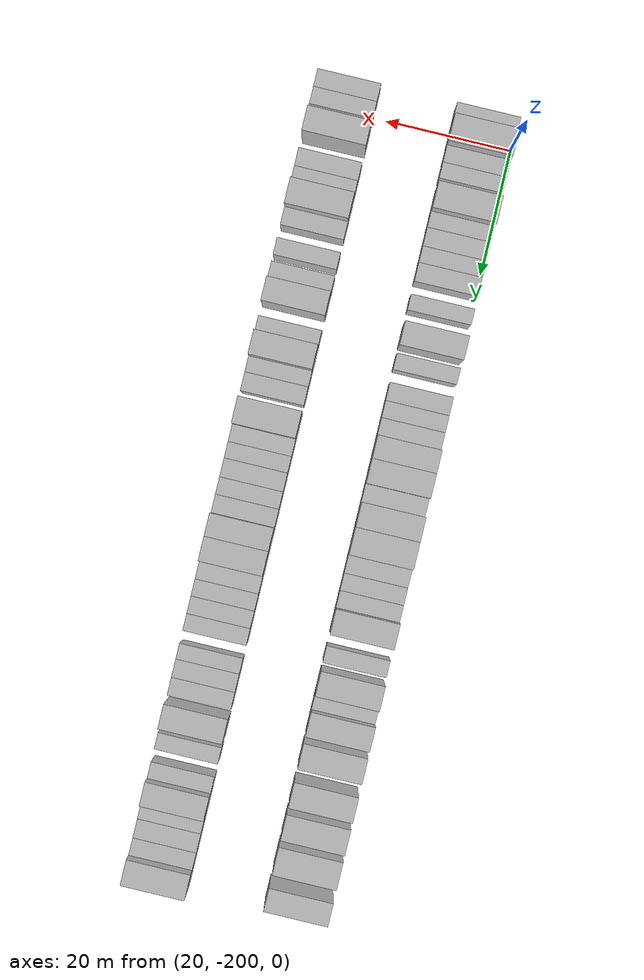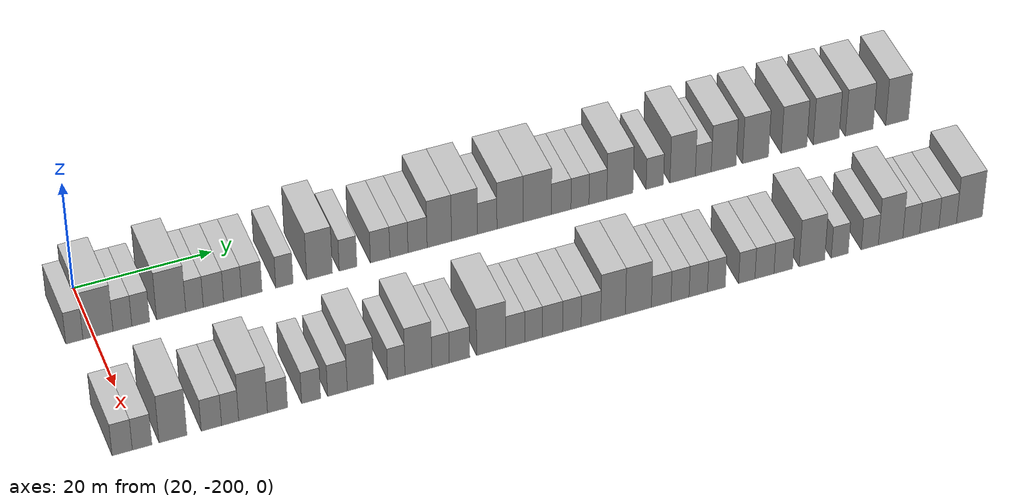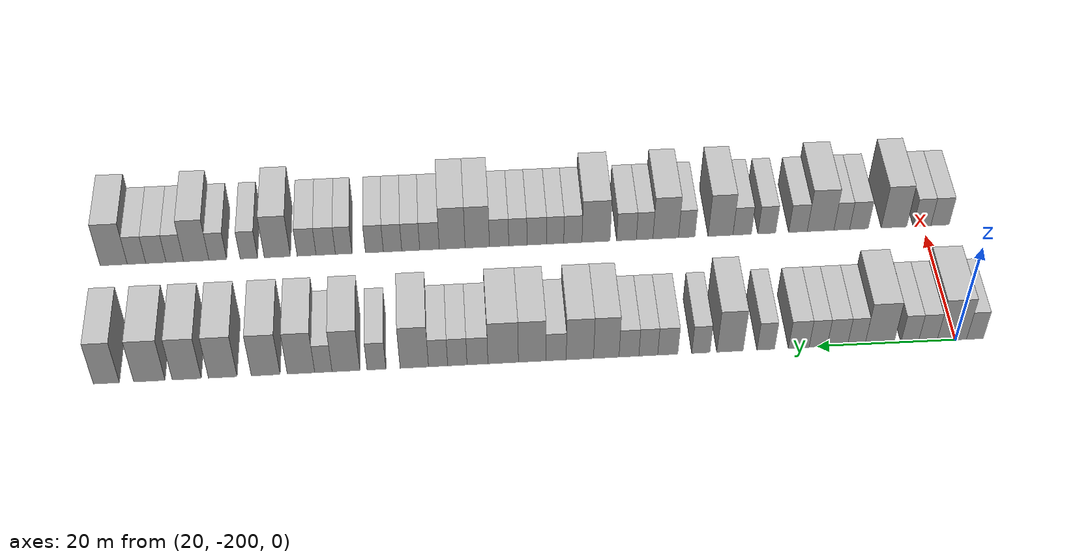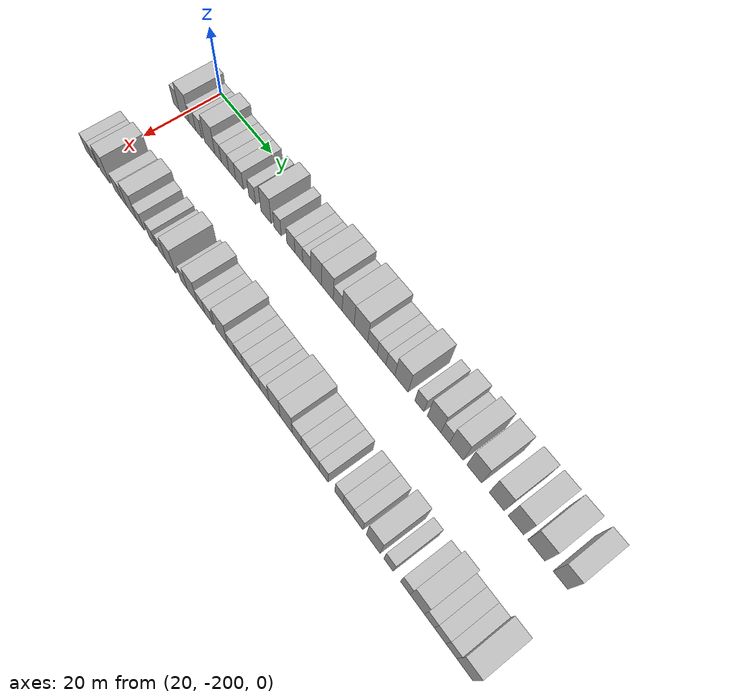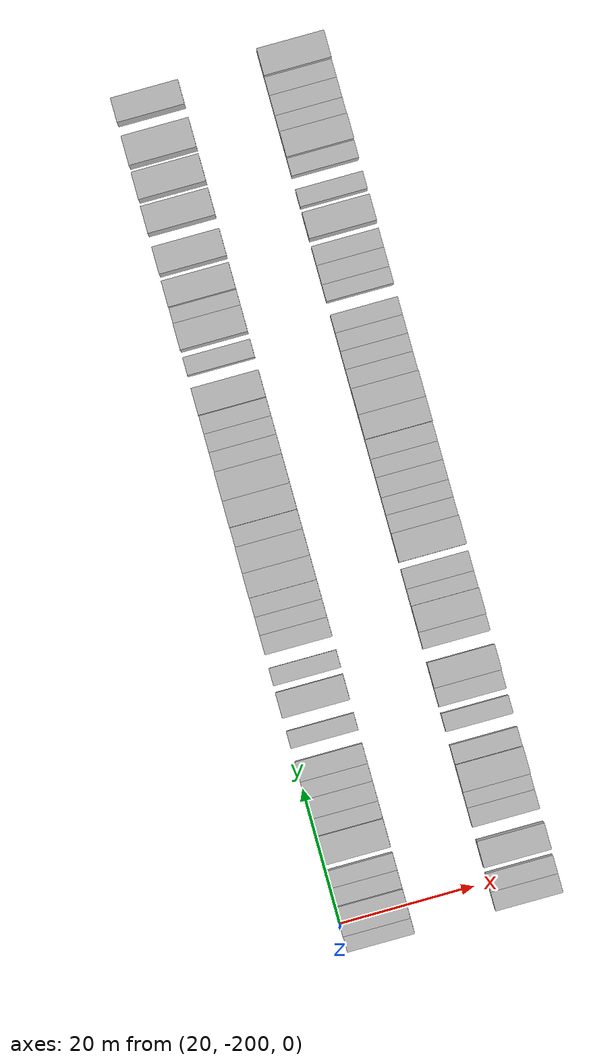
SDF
<sdf version="1.6">
 <world name="default">
  <model name="building_1">
   <static>1</static>
   <pose>25.0000 -202.7834 0 0.000000 0.000000 0.000000</pose>
   <link name="link">
    <pose>0 0 3.00 0 0 0</pose>
    <collision name="collision"><geometry><box><size>10.0000 2.4333 6.0000</size></box></geometry></collision>
    <visual name="visual">
     <cast_shadows>0</cast_shadows>
     <geometry><box><size>10.0000 2.4333 6.0000</size></box></geometry>
     <material>
      <script>
       <uri>model://HANNAS_wall/materials/scripts</uri>
       <uri>model://HANNAS_wall/materials/textures</uri>
       <name>vrc/HANNAS_wall</name>
      </script>
     </material>
    </visual>
   </link>
  </model>
  <model name="building_2">
   <static>1</static>
   <pose>25.0000 -199.4211 0 0.000000 0.000000 0.000000</pose>
   <link name="link">
    <pose>0 0 4.50 0 0 0</pose>
    <collision name="collision"><geometry><box><size>10.0000 4.2912 9.0000</size></box></geometry></collision>
    <visual name="visual">
     <cast_shadows>0</cast_shadows>
     <geometry><box><size>10.0000 4.2912 9.0000</size></box></geometry>
     <material>
      <script>
       <uri>model://HANNAS_wall/materials/scripts</uri>
       <uri>model://HANNAS_wall/materials/textures</uri>
       <name>vrc/HANNAS_wall</name>
      </script>
     </material>
    </visual>
   </link>
  </model>
  <model name="building_3">
   <static>1</static>
   <pose>25.0000 -195.9313 0 0.000000 0.000000 0.000000</pose>
   <link name="link">
    <pose>0 0 3.00 0 0 0</pose>
    <collision name="collision"><geometry><box><size>10.0000 2.6886 6.0000</size></box></geometry></collision>
    <visual name="visual">
     <cast_shadows>0</cast_shadows>
     <geometry><box><size>10.0000 2.6886 6.0000</size></box></geometry>
     <material>
      <script>
       <uri>model://HANNAS_wall/materials/scripts</uri>
       <uri>model://HANNAS_wall/materials/textures</uri>
       <name>vrc/HANNAS_wall</name>
      </script>
     </material>
    </visual>
   </link>
  </model>
  <model name="building_4">
   <static>1</static>
   <pose>25.0000 -193.3184 0 0.000000 0.000000 0.000000</pose>
   <link name="link">
    <pose>0 0 3.00 0 0 0</pose>
    <collision name="collision"><geometry><box><size>10.0000 2.5372 6.0000</size></box></geometry></collision>
    <visual name="visual">
     <cast_shadows>0</cast_shadows>
     <geometry><box><size>10.0000 2.5372 6.0000</size></box></geometry>
     <material>
      <script>
       <uri>model://HANNAS_wall/materials/scripts</uri>
       <uri>model://HANNAS_wall/materials/textures</uri>
       <name>vrc/HANNAS_wall</name>
      </script>
     </material>
    </visual>
   </link>
  </model>
  <model name="building_5">
   <static>1</static>
   <pose>25.0000 -188.9515 0 0.000000 0.000000 0.000000</pose>
   <link name="link">
    <pose>0 0 4.50 0 0 0</pose>
    <collision name="collision"><geometry><box><size>10.0000 4.1965 9.0000</size></box></geometry></collision>
    <visual name="visual">
     <cast_shadows>0</cast_shadows>
     <geometry><box><size>10.0000 4.1965 9.0000</size></box></geometry>
     <material>
      <script>
       <uri>model://HANNAS_wall/materials/scripts</uri>
       <uri>model://HANNAS_wall/materials/textures</uri>
       <name>vrc/HANNAS_wall</name>
      </script>
     </material>
    </visual>
   </link>
  </model>
  <model name="building_6">
   <static>1</static>
   <pose>25.0000 -185.5904 0 0.000000 0.000000 0.000000</pose>
   <link name="link">
    <pose>0 0 3.00 0 0 0</pose>
    <collision name="collision"><geometry><box><size>10.0000 2.5256 6.0000</size></box></geometry></collision>
    <visual name="visual">
     <cast_shadows>0</cast_shadows>
     <geometry><box><size>10.0000 2.5256 6.0000</size></box></geometry>
     <material>
      <script>
       <uri>model://HANNAS_wall/materials/scripts</uri>
       <uri>model://HANNAS_wall/materials/textures</uri>
       <name>vrc/HANNAS_wall</name>
      </script>
     </material>
    </visual>
   </link>
  </model>
  <model name="building_7">
   <static>1</static>
   <pose>25.0000 -182.8566 0 0.000000 0.000000 0.000000</pose>
   <link name="link">
    <pose>0 0 3.00 0 0 0</pose>
    <collision name="collision"><geometry><box><size>10.0000 2.9419 6.0000</size></box></geometry></collision>
    <visual name="visual">
     <cast_shadows>0</cast_shadows>
     <geometry><box><size>10.0000 2.9419 6.0000</size></box></geometry>
     <material>
      <script>
       <uri>model://HANNAS_wall/materials/scripts</uri>
       <uri>model://HANNAS_wall/materials/textures</uri>
       <name>vrc/HANNAS_wall</name>
      </script>
     </material>
    </visual>
   </link>
  </model>
  <model name="building_8">
   <static>1</static>
   <pose>25.0000 -180.0870 0 0.000000 0.000000 0.000000</pose>
   <link name="link">
    <pose>0 0 3.00 0 0 0</pose>
    <collision name="collision"><geometry><box><size>10.0000 2.5973 6.0000</size></box></geometry></collision>
    <visual name="visual">
     <cast_shadows>0</cast_shadows>
     <geometry><box><size>10.0000 2.5973 6.0000</size></box></geometry>
     <material>
      <script>
       <uri>model://HANNAS_wall/materials/scripts</uri>
       <uri>model://HANNAS_wall/materials/textures</uri>
       <name>vrc/HANNAS_wall</name>
      </script>
     </material>
    </visual>
   </link>
  </model>
  <model name="building_9">
   <static>1</static>
   <pose>25.0000 -177.2991 0 0.000000 0.000000 0.000000</pose>
   <link name="link">
    <pose>0 0 3.00 0 0 0</pose>
    <collision name="collision"><geometry><box><size>10.0000 2.9786 6.0000</size></box></geometry></collision>
    <visual name="visual">
     <cast_shadows>0</cast_shadows>
     <geometry><box><size>10.0000 2.9786 6.0000</size></box></geometry>
     <material>
      <script>
       <uri>model://HANNAS_wall/materials/scripts</uri>
       <uri>model://HANNAS_wall/materials/textures</uri>
       <name>vrc/HANNAS_wall</name>
      </script>
     </material>
    </visual>
   </link>
  </model>
  <model name="building_10">
   <static>1</static>
   <pose>25.0000 -172.5464 0 0.000000 0.000000 0.000000</pose>
   <link name="link">
    <pose>0 0 3.00 0 0 0</pose>
    <collision name="collision"><geometry><box><size>10.0000 2.5269 6.0000</size></box></geometry></collision>
    <visual name="visual">
     <cast_shadows>0</cast_shadows>
     <geometry><box><size>10.0000 2.5269 6.0000</size></box></geometry>
     <material>
      <script>
       <uri>model://HANNAS_wall/materials/scripts</uri>
       <uri>model://HANNAS_wall/materials/textures</uri>
       <name>vrc/HANNAS_wall</name>
      </script>
     </material>
    </visual>
   </link>
  </model>
  <model name="building_11">
   <static>1</static>
   <pose>25.0000 -167.4018 0 0.000000 0.000000 0.000000</pose>
   <link name="link">
    <pose>0 0 4.50 0 0 0</pose>
    <collision name="collision"><geometry><box><size>10.0000 3.7622 9.0000</size></box></geometry></collision>
    <visual name="visual">
     <cast_shadows>0</cast_shadows>
     <geometry><box><size>10.0000 3.7622 9.0000</size></box></geometry>
     <material>
      <script>
       <uri>model://HANNAS_wall/materials/scripts</uri>
       <uri>model://HANNAS_wall/materials/textures</uri>
       <name>vrc/HANNAS_wall</name>
      </script>
     </material>
    </visual>
   </link>
  </model>
  <model name="building_12">
   <static>1</static>
   <pose>25.0000 -163.2231 0 0.000000 0.000000 0.000000</pose>
   <link name="link">
    <pose>0 0 3.00 0 0 0</pose>
    <collision name="collision"><geometry><box><size>10.0000 2.5953 6.0000</size></box></geometry></collision>
    <visual name="visual">
     <cast_shadows>0</cast_shadows>
     <geometry><box><size>10.0000 2.5953 6.0000</size></box></geometry>
     <material>
      <script>
       <uri>model://HANNAS_wall/materials/scripts</uri>
       <uri>model://HANNAS_wall/materials/textures</uri>
       <name>vrc/HANNAS_wall</name>
      </script>
     </material>
    </visual>
   </link>
  </model>
  <model name="building_13">
   <static>1</static>
   <pose>25.0000 -158.4871 0 0.000000 0.000000 0.000000</pose>
   <link name="link">
    <pose>0 0 3.00 0 0 0</pose>
    <collision name="collision"><geometry><box><size>10.0000 2.8767 6.0000</size></box></geometry></collision>
    <visual name="visual">
     <cast_shadows>0</cast_shadows>
     <geometry><box><size>10.0000 2.8767 6.0000</size></box></geometry>
     <material>
      <script>
       <uri>model://HANNAS_wall/materials/scripts</uri>
       <uri>model://HANNAS_wall/materials/textures</uri>
       <name>vrc/HANNAS_wall</name>
      </script>
     </material>
    </visual>
   </link>
  </model>
  <model name="building_14">
   <static>1</static>
   <pose>25.0000 -155.7029 0 0.000000 0.000000 0.000000</pose>
   <link name="link">
    <pose>0 0 3.00 0 0 0</pose>
    <collision name="collision"><geometry><box><size>10.0000 2.6917 6.0000</size></box></geometry></collision>
    <visual name="visual">
     <cast_shadows>0</cast_shadows>
     <geometry><box><size>10.0000 2.6917 6.0000</size></box></geometry>
     <material>
      <script>
       <uri>model://HANNAS_wall/materials/scripts</uri>
       <uri>model://HANNAS_wall/materials/textures</uri>
       <name>vrc/HANNAS_wall</name>
      </script>
     </material>
    </visual>
   </link>
  </model>
  <model name="building_15">
   <static>1</static>
   <pose>25.0000 -152.9369 0 0.000000 0.000000 0.000000</pose>
   <link name="link">
    <pose>0 0 3.00 0 0 0</pose>
    <collision name="collision"><geometry><box><size>10.0000 2.8404 6.0000</size></box></geometry></collision>
    <visual name="visual">
     <cast_shadows>0</cast_shadows>
     <geometry><box><size>10.0000 2.8404 6.0000</size></box></geometry>
     <material>
      <script>
       <uri>model://HANNAS_wall/materials/scripts</uri>
       <uri>model://HANNAS_wall/materials/textures</uri>
       <name>vrc/HANNAS_wall</name>
      </script>
     </material>
    </visual>
   </link>
  </model>
  <model name="building_16">
   <static>1</static>
   <pose>25.0000 -149.6994 0 0.000000 0.000000 0.000000</pose>
   <link name="link">
    <pose>0 0 4.50 0 0 0</pose>
    <collision name="collision"><geometry><box><size>10.0000 3.6344 9.0000</size></box></geometry></collision>
    <visual name="visual">
     <cast_shadows>0</cast_shadows>
     <geometry><box><size>10.0000 3.6344 9.0000</size></box></geometry>
     <material>
      <script>
       <uri>model://HANNAS_wall/materials/scripts</uri>
       <uri>model://HANNAS_wall/materials/textures</uri>
       <name>vrc/HANNAS_wall</name>
      </script>
     </material>
    </visual>
   </link>
  </model>
  <model name="building_17">
   <static>1</static>
   <pose>25.0000 -145.9331 0 0.000000 0.000000 0.000000</pose>
   <link name="link">
    <pose>0 0 4.50 0 0 0</pose>
    <collision name="collision"><geometry><box><size>10.0000 3.8982 9.0000</size></box></geometry></collision>
    <visual name="visual">
     <cast_shadows>0</cast_shadows>
     <geometry><box><size>10.0000 3.8982 9.0000</size></box></geometry>
     <material>
      <script>
       <uri>model://HANNAS_wall/materials/scripts</uri>
       <uri>model://HANNAS_wall/materials/textures</uri>
       <name>vrc/HANNAS_wall</name>
      </script>
     </material>
    </visual>
   </link>
  </model>
  <model name="building_18">
   <static>1</static>
   <pose>25.0000 -142.5305 0 0.000000 0.000000 0.000000</pose>
   <link name="link">
    <pose>0 0 3.00 0 0 0</pose>
    <collision name="collision"><geometry><box><size>10.0000 2.9070 6.0000</size></box></geometry></collision>
    <visual name="visual">
     <cast_shadows>0</cast_shadows>
     <geometry><box><size>10.0000 2.9070 6.0000</size></box></geometry>
     <material>
      <script>
       <uri>model://HANNAS_wall/materials/scripts</uri>
       <uri>model://HANNAS_wall/materials/textures</uri>
       <name>vrc/HANNAS_wall</name>
      </script>
     </material>
    </visual>
   </link>
  </model>
  <model name="building_19">
   <static>1</static>
   <pose>25.0000 -139.1296 0 0.000000 0.000000 0.000000</pose>
   <link name="link">
    <pose>0 0 4.50 0 0 0</pose>
    <collision name="collision"><geometry><box><size>10.0000 3.8948 9.0000</size></box></geometry></collision>
    <visual name="visual">
     <cast_shadows>0</cast_shadows>
     <geometry><box><size>10.0000 3.8948 9.0000</size></box></geometry>
     <material>
      <script>
       <uri>model://HANNAS_wall/materials/scripts</uri>
       <uri>model://HANNAS_wall/materials/textures</uri>
       <name>vrc/HANNAS_wall</name>
      </script>
     </material>
    </visual>
   </link>
  </model>
  <model name="building_20">
   <static>1</static>
   <pose>25.0000 -135.0204 0 0.000000 0.000000 0.000000</pose>
   <link name="link">
    <pose>0 0 4.50 0 0 0</pose>
    <collision name="collision"><geometry><box><size>10.0000 4.3237 9.0000</size></box></geometry></collision>
    <visual name="visual">
     <cast_shadows>0</cast_shadows>
     <geometry><box><size>10.0000 4.3237 9.0000</size></box></geometry>
     <material>
      <script>
       <uri>model://HANNAS_wall/materials/scripts</uri>
       <uri>model://HANNAS_wall/materials/textures</uri>
       <name>vrc/HANNAS_wall</name>
      </script>
     </material>
    </visual>
   </link>
  </model>
  <model name="building_21">
   <static>1</static>
   <pose>25.0000 -131.3810 0 0.000000 0.000000 0.000000</pose>
   <link name="link">
    <pose>0 0 3.00 0 0 0</pose>
    <collision name="collision"><geometry><box><size>10.0000 2.9551 6.0000</size></box></geometry></collision>
    <visual name="visual">
     <cast_shadows>0</cast_shadows>
     <geometry><box><size>10.0000 2.9551 6.0000</size></box></geometry>
     <material>
      <script>
       <uri>model://HANNAS_wall/materials/scripts</uri>
       <uri>model://HANNAS_wall/materials/textures</uri>
       <name>vrc/HANNAS_wall</name>
      </script>
     </material>
    </visual>
   </link>
  </model>
  <model name="building_22">
   <static>1</static>
   <pose>25.0000 -128.5316 0 0.000000 0.000000 0.000000</pose>
   <link name="link">
    <pose>0 0 3.00 0 0 0</pose>
    <collision name="collision"><geometry><box><size>10.0000 2.7437 6.0000</size></box></geometry></collision>
    <visual name="visual">
     <cast_shadows>0</cast_shadows>
     <geometry><box><size>10.0000 2.7437 6.0000</size></box></geometry>
     <material>
      <script>
       <uri>model://HANNAS_wall/materials/scripts</uri>
       <uri>model://HANNAS_wall/materials/textures</uri>
       <name>vrc/HANNAS_wall</name>
      </script>
     </material>
    </visual>
   </link>
  </model>
  <model name="building_23">
   <static>1</static>
   <pose>25.0000 -125.8042 0 0.000000 0.000000 0.000000</pose>
   <link name="link">
    <pose>0 0 3.00 0 0 0</pose>
    <collision name="collision"><geometry><box><size>10.0000 2.7111 6.0000</size></box></geometry></collision>
    <visual name="visual">
     <cast_shadows>0</cast_shadows>
     <geometry><box><size>10.0000 2.7111 6.0000</size></box></geometry>
     <material>
      <script>
       <uri>model://HANNAS_wall/materials/scripts</uri>
       <uri>model://HANNAS_wall/materials/textures</uri>
       <name>vrc/HANNAS_wall</name>
      </script>
     </material>
    </visual>
   </link>
  </model>
  <model name="building_24">
   <static>1</static>
   <pose>25.0000 -122.4449 0 0.000000 0.000000 0.000000</pose>
   <link name="link">
    <pose>0 0 4.50 0 0 0</pose>
    <collision name="collision"><geometry><box><size>10.0000 4.0074 9.0000</size></box></geometry></collision>
    <visual name="visual">
     <cast_shadows>0</cast_shadows>
     <geometry><box><size>10.0000 4.0074 9.0000</size></box></geometry>
     <material>
      <script>
       <uri>model://HANNAS_wall/materials/scripts</uri>
       <uri>model://HANNAS_wall/materials/textures</uri>
       <name>vrc/HANNAS_wall</name>
      </script>
     </material>
    </visual>
   </link>
  </model>
  <model name="building_25">
   <static>1</static>
   <pose>25.0000 -117.1076 0 0.000000 0.000000 0.000000</pose>
   <link name="link">
    <pose>0 0 3.00 0 0 0</pose>
    <collision name="collision"><geometry><box><size>10.0000 2.6671 6.0000</size></box></geometry></collision>
    <visual name="visual">
     <cast_shadows>0</cast_shadows>
     <geometry><box><size>10.0000 2.6671 6.0000</size></box></geometry>
     <material>
      <script>
       <uri>model://HANNAS_wall/materials/scripts</uri>
       <uri>model://HANNAS_wall/materials/textures</uri>
       <name>vrc/HANNAS_wall</name>
      </script>
     </material>
    </visual>
   </link>
  </model>
  <model name="building_26">
   <static>1</static>
   <pose>25.0000 -112.8133 0 0.000000 0.000000 0.000000</pose>
   <link name="link">
    <pose>0 0 4.50 0 0 0</pose>
    <collision name="collision"><geometry><box><size>10.0000 3.9217 9.0000</size></box></geometry></collision>
    <visual name="visual">
     <cast_shadows>0</cast_shadows>
     <geometry><box><size>10.0000 3.9217 9.0000</size></box></geometry>
     <material>
      <script>
       <uri>model://HANNAS_wall/materials/scripts</uri>
       <uri>model://HANNAS_wall/materials/textures</uri>
       <name>vrc/HANNAS_wall</name>
      </script>
     </material>
    </visual>
   </link>
  </model>
  <model name="building_27">
   <static>1</static>
   <pose>25.0000 -109.6304 0 0.000000 0.000000 0.000000</pose>
   <link name="link">
    <pose>0 0 3.00 0 0 0</pose>
    <collision name="collision"><geometry><box><size>10.0000 2.4440 6.0000</size></box></geometry></collision>
    <visual name="visual">
     <cast_shadows>0</cast_shadows>
     <geometry><box><size>10.0000 2.4440 6.0000</size></box></geometry>
     <material>
      <script>
       <uri>model://HANNAS_wall/materials/scripts</uri>
       <uri>model://HANNAS_wall/materials/textures</uri>
       <name>vrc/HANNAS_wall</name>
      </script>
     </material>
    </visual>
   </link>
  </model>
  <model name="building_28">
   <static>1</static>
   <pose>25.0000 -106.4745 0 0.000000 0.000000 0.000000</pose>
   <link name="link">
    <pose>0 0 4.50 0 0 0</pose>
    <collision name="collision"><geometry><box><size>10.0000 3.8679 9.0000</size></box></geometry></collision>
    <visual name="visual">
     <cast_shadows>0</cast_shadows>
     <geometry><box><size>10.0000 3.8679 9.0000</size></box></geometry>
     <material>
      <script>
       <uri>model://HANNAS_wall/materials/scripts</uri>
       <uri>model://HANNAS_wall/materials/textures</uri>
       <name>vrc/HANNAS_wall</name>
      </script>
     </material>
    </visual>
   </link>
  </model>
  <model name="building_29">
   <static>1</static>
   <pose>25.0000 -101.5200 0 0.000000 0.000000 0.000000</pose>
   <link name="link">
    <pose>0 0 4.50 0 0 0</pose>
    <collision name="collision"><geometry><box><size>10.0000 4.0411 9.0000</size></box></geometry></collision>
    <visual name="visual">
     <cast_shadows>0</cast_shadows>
     <geometry><box><size>10.0000 4.0411 9.0000</size></box></geometry>
     <material>
      <script>
       <uri>model://HANNAS_wall/materials/scripts</uri>
       <uri>model://HANNAS_wall/materials/textures</uri>
       <name>vrc/HANNAS_wall</name>
      </script>
     </material>
    </visual>
   </link>
  </model>
  <model name="building_30">
   <static>1</static>
   <pose>25.0000 -95.4917 0 0.000000 0.000000 0.000000</pose>
   <link name="link">
    <pose>0 0 4.50 0 0 0</pose>
    <collision name="collision"><geometry><box><size>10.0000 4.0156 9.0000</size></box></geometry></collision>
    <visual name="visual">
     <cast_shadows>0</cast_shadows>
     <geometry><box><size>10.0000 4.0156 9.0000</size></box></geometry>
     <material>
      <script>
       <uri>model://HANNAS_wall/materials/scripts</uri>
       <uri>model://HANNAS_wall/materials/textures</uri>
       <name>vrc/HANNAS_wall</name>
      </script>
     </material>
    </visual>
   </link>
  </model>
  <model name="building_31">
   <static>1</static>
   <pose>25.0000 -90.4538 0 0.000000 0.000000 0.000000</pose>
   <link name="link">
    <pose>0 0 4.50 0 0 0</pose>
    <collision name="collision"><geometry><box><size>10.0000 4.0603 9.0000</size></box></geometry></collision>
    <visual name="visual">
     <cast_shadows>0</cast_shadows>
     <geometry><box><size>10.0000 4.0603 9.0000</size></box></geometry>
     <material>
      <script>
       <uri>model://HANNAS_wall/materials/scripts</uri>
       <uri>model://HANNAS_wall/materials/textures</uri>
       <name>vrc/HANNAS_wall</name>
      </script>
     </material>
    </visual>
   </link>
  </model>
  <model name="building_32">
   <static>1</static>
   <pose>25.0000 -85.2366 0 0.000000 0.000000 0.000000</pose>
   <link name="link">
    <pose>0 0 4.50 0 0 0</pose>
    <collision name="collision"><geometry><box><size>10.0000 4.3740 9.0000</size></box></geometry></collision>
    <visual name="visual">
     <cast_shadows>0</cast_shadows>
     <geometry><box><size>10.0000 4.3740 9.0000</size></box></geometry>
     <material>
      <script>
       <uri>model://HANNAS_wall/materials/scripts</uri>
       <uri>model://HANNAS_wall/materials/textures</uri>
       <name>vrc/HANNAS_wall</name>
      </script>
     </material>
    </visual>
   </link>
  </model>
  <model name="building_33">
   <static>1</static>
   <pose>25.0000 -79.2370 0 0.000000 0.000000 0.000000</pose>
   <link name="link">
    <pose>0 0 4.50 0 0 0</pose>
    <collision name="collision"><geometry><box><size>10.0000 3.6253 9.0000</size></box></geometry></collision>
    <visual name="visual">
     <cast_shadows>0</cast_shadows>
     <geometry><box><size>10.0000 3.6253 9.0000</size></box></geometry>
     <material>
      <script>
       <uri>model://HANNAS_wall/materials/scripts</uri>
       <uri>model://HANNAS_wall/materials/textures</uri>
       <name>vrc/HANNAS_wall</name>
      </script>
     </material>
    </visual>
   </link>
  </model>
  <model name="building_106">
   <static>1</static>
   <pose>47.0000 -202.5967 0 0.000000 0.000000 0.000000</pose>
   <link name="link">
    <pose>0 0 3.00 0 0 0</pose>
    <collision name="collision"><geometry><box><size>10.0000 2.8065 6.0000</size></box></geometry></collision>
    <visual name="visual">
     <cast_shadows>0</cast_shadows>
     <geometry><box><size>10.0000 2.8065 6.0000</size></box></geometry>
     <material>
      <script>
       <uri>model://HANNAS_wall/materials/scripts</uri>
       <uri>model://HANNAS_wall/materials/textures</uri>
       <name>vrc/HANNAS_wall</name>
      </script>
     </material>
    </visual>
   </link>
  </model>
  <model name="building_107">
   <static>1</static>
   <pose>47.0000 -199.8369 0 0.000000 0.000000 0.000000</pose>
   <link name="link">
    <pose>0 0 3.00 0 0 0</pose>
    <collision name="collision"><geometry><box><size>10.0000 2.7131 6.0000</size></box></geometry></collision>
    <visual name="visual">
     <cast_shadows>0</cast_shadows>
     <geometry><box><size>10.0000 2.7131 6.0000</size></box></geometry>
     <material>
      <script>
       <uri>model://HANNAS_wall/materials/scripts</uri>
       <uri>model://HANNAS_wall/materials/textures</uri>
       <name>vrc/HANNAS_wall</name>
      </script>
     </material>
    </visual>
   </link>
  </model>
  <model name="building_108">
   <static>1</static>
   <pose>47.0000 -195.5367 0 0.000000 0.000000 0.000000</pose>
   <link name="link">
    <pose>0 0 4.50 0 0 0</pose>
    <collision name="collision"><geometry><box><size>10.0000 3.8873 9.0000</size></box></geometry></collision>
    <visual name="visual">
     <cast_shadows>0</cast_shadows>
     <geometry><box><size>10.0000 3.8873 9.0000</size></box></geometry>
     <material>
      <script>
       <uri>model://HANNAS_wall/materials/scripts</uri>
       <uri>model://HANNAS_wall/materials/textures</uri>
       <name>vrc/HANNAS_wall</name>
      </script>
     </material>
    </visual>
   </link>
  </model>
  <model name="building_109">
   <static>1</static>
   <pose>47.0000 -190.1664 0 0.000000 0.000000 0.000000</pose>
   <link name="link">
    <pose>0 0 3.00 0 0 0</pose>
    <collision name="collision"><geometry><box><size>10.0000 2.8533 6.0000</size></box></geometry></collision>
    <visual name="visual">
     <cast_shadows>0</cast_shadows>
     <geometry><box><size>10.0000 2.8533 6.0000</size></box></geometry>
     <material>
      <script>
       <uri>model://HANNAS_wall/materials/scripts</uri>
       <uri>model://HANNAS_wall/materials/textures</uri>
       <name>vrc/HANNAS_wall</name>
      </script>
     </material>
    </visual>
   </link>
  </model>
  <model name="building_110">
   <static>1</static>
   <pose>47.0000 -187.5386 0 0.000000 0.000000 0.000000</pose>
   <link name="link">
    <pose>0 0 3.00 0 0 0</pose>
    <collision name="collision"><geometry><box><size>10.0000 2.4022 6.0000</size></box></geometry></collision>
    <visual name="visual">
     <cast_shadows>0</cast_shadows>
     <geometry><box><size>10.0000 2.4022 6.0000</size></box></geometry>
     <material>
      <script>
       <uri>model://HANNAS_wall/materials/scripts</uri>
       <uri>model://HANNAS_wall/materials/textures</uri>
       <name>vrc/HANNAS_wall</name>
      </script>
     </material>
    </visual>
   </link>
  </model>
  <model name="building_111">
   <static>1</static>
   <pose>47.0000 -184.3052 0 0.000000 0.000000 0.000000</pose>
   <link name="link">
    <pose>0 0 4.50 0 0 0</pose>
    <collision name="collision"><geometry><box><size>10.0000 4.0645 9.0000</size></box></geometry></collision>
    <visual name="visual">
     <cast_shadows>0</cast_shadows>
     <geometry><box><size>10.0000 4.0645 9.0000</size></box></geometry>
     <material>
      <script>
       <uri>model://HANNAS_wall/materials/scripts</uri>
       <uri>model://HANNAS_wall/materials/textures</uri>
       <name>vrc/HANNAS_wall</name>
      </script>
     </material>
    </visual>
   </link>
  </model>
  <model name="building_112">
   <static>1</static>
   <pose>47.0000 -180.8559 0 0.000000 0.000000 0.000000</pose>
   <link name="link">
    <pose>0 0 3.00 0 0 0</pose>
    <collision name="collision"><geometry><box><size>10.0000 2.8343 6.0000</size></box></geometry></collision>
    <visual name="visual">
     <cast_shadows>0</cast_shadows>
     <geometry><box><size>10.0000 2.8343 6.0000</size></box></geometry>
     <material>
      <script>
       <uri>model://HANNAS_wall/materials/scripts</uri>
       <uri>model://HANNAS_wall/materials/textures</uri>
       <name>vrc/HANNAS_wall</name>
      </script>
     </material>
    </visual>
   </link>
  </model>
  <model name="building_113">
   <static>1</static>
   <pose>47.0000 -176.0917 0 0.000000 0.000000 0.000000</pose>
   <link name="link">
    <pose>0 0 3.00 0 0 0</pose>
    <collision name="collision"><geometry><box><size>10.0000 2.6940 6.0000</size></box></geometry></collision>
    <visual name="visual">
     <cast_shadows>0</cast_shadows>
     <geometry><box><size>10.0000 2.6940 6.0000</size></box></geometry>
     <material>
      <script>
       <uri>model://HANNAS_wall/materials/scripts</uri>
       <uri>model://HANNAS_wall/materials/textures</uri>
       <name>vrc/HANNAS_wall</name>
      </script>
     </material>
    </visual>
   </link>
  </model>
  <model name="building_114">
   <static>1</static>
   <pose>47.0000 -172.3436 0 0.000000 0.000000 0.000000</pose>
   <link name="link">
    <pose>0 0 3.00 0 0 0</pose>
    <collision name="collision"><geometry><box><size>10.0000 2.8023 6.0000</size></box></geometry></collision>
    <visual name="visual">
     <cast_shadows>0</cast_shadows>
     <geometry><box><size>10.0000 2.8023 6.0000</size></box></geometry>
     <material>
      <script>
       <uri>model://HANNAS_wall/materials/scripts</uri>
       <uri>model://HANNAS_wall/materials/textures</uri>
       <name>vrc/HANNAS_wall</name>
      </script>
     </material>
    </visual>
   </link>
  </model>
  <model name="building_115">
   <static>1</static>
   <pose>47.0000 -169.0541 0 0.000000 0.000000 0.000000</pose>
   <link name="link">
    <pose>0 0 4.50 0 0 0</pose>
    <collision name="collision"><geometry><box><size>10.0000 3.7765 9.0000</size></box></geometry></collision>
    <visual name="visual">
     <cast_shadows>0</cast_shadows>
     <geometry><box><size>10.0000 3.7765 9.0000</size></box></geometry>
     <material>
      <script>
       <uri>model://HANNAS_wall/materials/scripts</uri>
       <uri>model://HANNAS_wall/materials/textures</uri>
       <name>vrc/HANNAS_wall</name>
      </script>
     </material>
    </visual>
   </link>
  </model>
  <model name="building_116">
   <static>1</static>
   <pose>47.0000 -163.9216 0 0.000000 0.000000 0.000000</pose>
   <link name="link">
    <pose>0 0 3.00 0 0 0</pose>
    <collision name="collision"><geometry><box><size>10.0000 2.4886 6.0000</size></box></geometry></collision>
    <visual name="visual">
     <cast_shadows>0</cast_shadows>
     <geometry><box><size>10.0000 2.4886 6.0000</size></box></geometry>
     <material>
      <script>
       <uri>model://HANNAS_wall/materials/scripts</uri>
       <uri>model://HANNAS_wall/materials/textures</uri>
       <name>vrc/HANNAS_wall</name>
      </script>
     </material>
    </visual>
   </link>
  </model>
  <model name="building_117">
   <static>1</static>
   <pose>47.0000 -160.7374 0 0.000000 0.000000 0.000000</pose>
   <link name="link">
    <pose>0 0 4.50 0 0 0</pose>
    <collision name="collision"><geometry><box><size>10.0000 3.8796 9.0000</size></box></geometry></collision>
    <visual name="visual">
     <cast_shadows>0</cast_shadows>
     <geometry><box><size>10.0000 3.8796 9.0000</size></box></geometry>
     <material>
      <script>
       <uri>model://HANNAS_wall/materials/scripts</uri>
       <uri>model://HANNAS_wall/materials/textures</uri>
       <name>vrc/HANNAS_wall</name>
      </script>
     </material>
    </visual>
   </link>
  </model>
  <model name="building_118">
   <static>1</static>
   <pose>47.0000 -157.5420 0 0.000000 0.000000 0.000000</pose>
   <link name="link">
    <pose>0 0 3.00 0 0 0</pose>
    <collision name="collision"><geometry><box><size>10.0000 2.5112 6.0000</size></box></geometry></collision>
    <visual name="visual">
     <cast_shadows>0</cast_shadows>
     <geometry><box><size>10.0000 2.5112 6.0000</size></box></geometry>
     <material>
      <script>
       <uri>model://HANNAS_wall/materials/scripts</uri>
       <uri>model://HANNAS_wall/materials/textures</uri>
       <name>vrc/HANNAS_wall</name>
      </script>
     </material>
    </visual>
   </link>
  </model>
  <model name="building_119">
   <static>1</static>
   <pose>47.0000 -154.7978 0 0.000000 0.000000 0.000000</pose>
   <link name="link">
    <pose>0 0 3.00 0 0 0</pose>
    <collision name="collision"><geometry><box><size>10.0000 2.9771 6.0000</size></box></geometry></collision>
    <visual name="visual">
     <cast_shadows>0</cast_shadows>
     <geometry><box><size>10.0000 2.9771 6.0000</size></box></geometry>
     <material>
      <script>
       <uri>model://HANNAS_wall/materials/scripts</uri>
       <uri>model://HANNAS_wall/materials/textures</uri>
       <name>vrc/HANNAS_wall</name>
      </script>
     </material>
    </visual>
   </link>
  </model>
  <model name="building_120">
   <static>1</static>
   <pose>47.0000 -150.1892 0 0.000000 0.000000 0.000000</pose>
   <link name="link">
    <pose>0 0 4.50 0 0 0</pose>
    <collision name="collision"><geometry><box><size>10.0000 4.2403 9.0000</size></box></geometry></collision>
    <visual name="visual">
     <cast_shadows>0</cast_shadows>
     <geometry><box><size>10.0000 4.2403 9.0000</size></box></geometry>
     <material>
      <script>
       <uri>model://HANNAS_wall/materials/scripts</uri>
       <uri>model://HANNAS_wall/materials/textures</uri>
       <name>vrc/HANNAS_wall</name>
      </script>
     </material>
    </visual>
   </link>
  </model>
  <model name="building_121">
   <static>1</static>
   <pose>47.0000 -146.6948 0 0.000000 0.000000 0.000000</pose>
   <link name="link">
    <pose>0 0 3.00 0 0 0</pose>
    <collision name="collision"><geometry><box><size>10.0000 2.7485 6.0000</size></box></geometry></collision>
    <visual name="visual">
     <cast_shadows>0</cast_shadows>
     <geometry><box><size>10.0000 2.7485 6.0000</size></box></geometry>
     <material>
      <script>
       <uri>model://HANNAS_wall/materials/scripts</uri>
       <uri>model://HANNAS_wall/materials/textures</uri>
       <name>vrc/HANNAS_wall</name>
      </script>
     </material>
    </visual>
   </link>
  </model>
  <model name="building_122">
   <static>1</static>
   <pose>47.0000 -144.0251 0 0.000000 0.000000 0.000000</pose>
   <link name="link">
    <pose>0 0 3.00 0 0 0</pose>
    <collision name="collision"><geometry><box><size>10.0000 2.5907 6.0000</size></box></geometry></collision>
    <visual name="visual">
     <cast_shadows>0</cast_shadows>
     <geometry><box><size>10.0000 2.5907 6.0000</size></box></geometry>
     <material>
      <script>
       <uri>model://HANNAS_wall/materials/scripts</uri>
       <uri>model://HANNAS_wall/materials/textures</uri>
       <name>vrc/HANNAS_wall</name>
      </script>
     </material>
    </visual>
   </link>
  </model>
  <model name="building_123">
   <static>1</static>
   <pose>47.0000 -141.2442 0 0.000000 0.000000 0.000000</pose>
   <link name="link">
    <pose>0 0 3.00 0 0 0</pose>
    <collision name="collision"><geometry><box><size>10.0000 2.9712 6.0000</size></box></geometry></collision>
    <visual name="visual">
     <cast_shadows>0</cast_shadows>
     <geometry><box><size>10.0000 2.9712 6.0000</size></box></geometry>
     <material>
      <script>
       <uri>model://HANNAS_wall/materials/scripts</uri>
       <uri>model://HANNAS_wall/materials/textures</uri>
       <name>vrc/HANNAS_wall</name>
      </script>
     </material>
    </visual>
   </link>
  </model>
  <model name="building_124">
   <static>1</static>
   <pose>47.0000 -138.3931 0 0.000000 0.000000 0.000000</pose>
   <link name="link">
    <pose>0 0 3.00 0 0 0</pose>
    <collision name="collision"><geometry><box><size>10.0000 2.7310 6.0000</size></box></geometry></collision>
    <visual name="visual">
     <cast_shadows>0</cast_shadows>
     <geometry><box><size>10.0000 2.7310 6.0000</size></box></geometry>
     <material>
      <script>
       <uri>model://HANNAS_wall/materials/scripts</uri>
       <uri>model://HANNAS_wall/materials/textures</uri>
       <name>vrc/HANNAS_wall</name>
      </script>
     </material>
    </visual>
   </link>
  </model>
  <model name="building_125">
   <static>1</static>
   <pose>47.0000 -135.5768 0 0.000000 0.000000 0.000000</pose>
   <link name="link">
    <pose>0 0 3.00 0 0 0</pose>
    <collision name="collision"><geometry><box><size>10.0000 2.9015 6.0000</size></box></geometry></collision>
    <visual name="visual">
     <cast_shadows>0</cast_shadows>
     <geometry><box><size>10.0000 2.9015 6.0000</size></box></geometry>
     <material>
      <script>
       <uri>model://HANNAS_wall/materials/scripts</uri>
       <uri>model://HANNAS_wall/materials/textures</uri>
       <name>vrc/HANNAS_wall</name>
      </script>
     </material>
    </visual>
   </link>
  </model>
  <model name="building_126">
   <static>1</static>
   <pose>47.0000 -132.3061 0 0.000000 0.000000 0.000000</pose>
   <link name="link">
    <pose>0 0 4.50 0 0 0</pose>
    <collision name="collision"><geometry><box><size>10.0000 3.6399 9.0000</size></box></geometry></collision>
    <visual name="visual">
     <cast_shadows>0</cast_shadows>
     <geometry><box><size>10.0000 3.6399 9.0000</size></box></geometry>
     <material>
      <script>
       <uri>model://HANNAS_wall/materials/scripts</uri>
       <uri>model://HANNAS_wall/materials/textures</uri>
       <name>vrc/HANNAS_wall</name>
      </script>
     </material>
    </visual>
   </link>
  </model>
  <model name="building_127">
   <static>1</static>
   <pose>47.0000 -128.5535 0 0.000000 0.000000 0.000000</pose>
   <link name="link">
    <pose>0 0 4.50 0 0 0</pose>
    <collision name="collision"><geometry><box><size>10.0000 3.8654 9.0000</size></box></geometry></collision>
    <visual name="visual">
     <cast_shadows>0</cast_shadows>
     <geometry><box><size>10.0000 3.8654 9.0000</size></box></geometry>
     <material>
      <script>
       <uri>model://HANNAS_wall/materials/scripts</uri>
       <uri>model://HANNAS_wall/materials/textures</uri>
       <name>vrc/HANNAS_wall</name>
      </script>
     </material>
    </visual>
   </link>
  </model>
  <model name="building_128">
   <static>1</static>
   <pose>47.0000 -125.1552 0 0.000000 0.000000 0.000000</pose>
   <link name="link">
    <pose>0 0 3.00 0 0 0</pose>
    <collision name="collision"><geometry><box><size>10.0000 2.9312 6.0000</size></box></geometry></collision>
    <visual name="visual">
     <cast_shadows>0</cast_shadows>
     <geometry><box><size>10.0000 2.9312 6.0000</size></box></geometry>
     <material>
      <script>
       <uri>model://HANNAS_wall/materials/scripts</uri>
       <uri>model://HANNAS_wall/materials/textures</uri>
       <name>vrc/HANNAS_wall</name>
      </script>
     </material>
    </visual>
   </link>
  </model>
  <model name="building_129">
   <static>1</static>
   <pose>47.0000 -122.3446 0 0.000000 0.000000 0.000000</pose>
   <link name="link">
    <pose>0 0 3.00 0 0 0</pose>
    <collision name="collision"><geometry><box><size>10.0000 2.6899 6.0000</size></box></geometry></collision>
    <visual name="visual">
     <cast_shadows>0</cast_shadows>
     <geometry><box><size>10.0000 2.6899 6.0000</size></box></geometry>
     <material>
      <script>
       <uri>model://HANNAS_wall/materials/scripts</uri>
       <uri>model://HANNAS_wall/materials/textures</uri>
       <name>vrc/HANNAS_wall</name>
      </script>
     </material>
    </visual>
   </link>
  </model>
  <model name="building_130">
   <static>1</static>
   <pose>47.0000 -119.6209 0 0.000000 0.000000 0.000000</pose>
   <link name="link">
    <pose>0 0 3.00 0 0 0</pose>
    <collision name="collision"><geometry><box><size>10.0000 2.7575 6.0000</size></box></geometry></collision>
    <visual name="visual">
     <cast_shadows>0</cast_shadows>
     <geometry><box><size>10.0000 2.7575 6.0000</size></box></geometry>
     <material>
      <script>
       <uri>model://HANNAS_wall/materials/scripts</uri>
       <uri>model://HANNAS_wall/materials/textures</uri>
       <name>vrc/HANNAS_wall</name>
      </script>
     </material>
    </visual>
   </link>
  </model>
  <model name="building_131">
   <static>1</static>
   <pose>47.0000 -116.9030 0 0.000000 0.000000 0.000000</pose>
   <link name="link">
    <pose>0 0 3.00 0 0 0</pose>
    <collision name="collision"><geometry><box><size>10.0000 2.6785 6.0000</size></box></geometry></collision>
    <visual name="visual">
     <cast_shadows>0</cast_shadows>
     <geometry><box><size>10.0000 2.6785 6.0000</size></box></geometry>
     <material>
      <script>
       <uri>model://HANNAS_wall/materials/scripts</uri>
       <uri>model://HANNAS_wall/materials/textures</uri>
       <name>vrc/HANNAS_wall</name>
      </script>
     </material>
    </visual>
   </link>
  </model>
  <model name="building_132">
   <static>1</static>
   <pose>47.0000 -112.3239 0 0.000000 0.000000 0.000000</pose>
   <link name="link">
    <pose>0 0 3.00 0 0 0</pose>
    <collision name="collision"><geometry><box><size>10.0000 2.4796 6.0000</size></box></geometry></collision>
    <visual name="visual">
     <cast_shadows>0</cast_shadows>
     <geometry><box><size>10.0000 2.4796 6.0000</size></box></geometry>
     <material>
      <script>
       <uri>model://HANNAS_wall/materials/scripts</uri>
       <uri>model://HANNAS_wall/materials/textures</uri>
       <name>vrc/HANNAS_wall</name>
      </script>
     </material>
    </visual>
   </link>
  </model>
  <model name="building_133">
   <static>1</static>
   <pose>47.0000 -109.6465 0 0.000000 0.000000 0.000000</pose>
   <link name="link">
    <pose>0 0 3.00 0 0 0</pose>
    <collision name="collision"><geometry><box><size>10.0000 2.8752 6.0000</size></box></geometry></collision>
    <visual name="visual">
     <cast_shadows>0</cast_shadows>
     <geometry><box><size>10.0000 2.8752 6.0000</size></box></geometry>
     <material>
      <script>
       <uri>model://HANNAS_wall/materials/scripts</uri>
       <uri>model://HANNAS_wall/materials/textures</uri>
       <name>vrc/HANNAS_wall</name>
      </script>
     </material>
    </visual>
   </link>
  </model>
  <model name="building_134">
   <static>1</static>
   <pose>47.0000 -106.7957 0 0.000000 0.000000 0.000000</pose>
   <link name="link">
    <pose>0 0 3.00 0 0 0</pose>
    <collision name="collision"><geometry><box><size>10.0000 2.8262 6.0000</size></box></geometry></collision>
    <visual name="visual">
     <cast_shadows>0</cast_shadows>
     <geometry><box><size>10.0000 2.8262 6.0000</size></box></geometry>
     <material>
      <script>
       <uri>model://HANNAS_wall/materials/scripts</uri>
       <uri>model://HANNAS_wall/materials/textures</uri>
       <name>vrc/HANNAS_wall</name>
      </script>
     </material>
    </visual>
   </link>
  </model>
  <model name="building_135">
   <static>1</static>
   <pose>47.0000 -102.4399 0 0.000000 0.000000 0.000000</pose>
   <link name="link">
    <pose>0 0 4.50 0 0 0</pose>
    <collision name="collision"><geometry><box><size>10.0000 3.8855 9.0000</size></box></geometry></collision>
    <visual name="visual">
     <cast_shadows>0</cast_shadows>
     <geometry><box><size>10.0000 3.8855 9.0000</size></box></geometry>
     <material>
      <script>
       <uri>model://HANNAS_wall/materials/scripts</uri>
       <uri>model://HANNAS_wall/materials/textures</uri>
       <name>vrc/HANNAS_wall</name>
      </script>
     </material>
    </visual>
   </link>
  </model>
  <model name="building_136">
   <static>1</static>
   <pose>47.0000 -98.1990 0 0.000000 0.000000 0.000000</pose>
   <link name="link">
    <pose>0 0 3.00 0 0 0</pose>
    <collision name="collision"><geometry><box><size>10.0000 2.5961 6.0000</size></box></geometry></collision>
    <visual name="visual">
     <cast_shadows>0</cast_shadows>
     <geometry><box><size>10.0000 2.5961 6.0000</size></box></geometry>
     <material>
      <script>
       <uri>model://HANNAS_wall/materials/scripts</uri>
       <uri>model://HANNAS_wall/materials/textures</uri>
       <name>vrc/HANNAS_wall</name>
      </script>
     </material>
    </visual>
   </link>
  </model>
  <model name="building_137">
   <static>1</static>
   <pose>47.0000 -93.5891 0 0.000000 0.000000 0.000000</pose>
   <link name="link">
    <pose>0 0 3.00 0 0 0</pose>
    <collision name="collision"><geometry><box><size>10.0000 2.6238 6.0000</size></box></geometry></collision>
    <visual name="visual">
     <cast_shadows>0</cast_shadows>
     <geometry><box><size>10.0000 2.6238 6.0000</size></box></geometry>
     <material>
      <script>
       <uri>model://HANNAS_wall/materials/scripts</uri>
       <uri>model://HANNAS_wall/materials/textures</uri>
       <name>vrc/HANNAS_wall</name>
      </script>
     </material>
    </visual>
   </link>
  </model>
  <model name="building_138">
   <static>1</static>
   <pose>47.0000 -90.3975 0 0.000000 0.000000 0.000000</pose>
   <link name="link">
    <pose>0 0 4.50 0 0 0</pose>
    <collision name="collision"><geometry><box><size>10.0000 3.7594 9.0000</size></box></geometry></collision>
    <visual name="visual">
     <cast_shadows>0</cast_shadows>
     <geometry><box><size>10.0000 3.7594 9.0000</size></box></geometry>
     <material>
      <script>
       <uri>model://HANNAS_wall/materials/scripts</uri>
       <uri>model://HANNAS_wall/materials/textures</uri>
       <name>vrc/HANNAS_wall</name>
      </script>
     </material>
    </visual>
   </link>
  </model>
  <model name="building_139">
   <static>1</static>
   <pose>47.0000 -87.2242 0 0.000000 0.000000 0.000000</pose>
   <link name="link">
    <pose>0 0 3.00 0 0 0</pose>
    <collision name="collision"><geometry><box><size>10.0000 2.5872 6.0000</size></box></geometry></collision>
    <visual name="visual">
     <cast_shadows>0</cast_shadows>
     <geometry><box><size>10.0000 2.5872 6.0000</size></box></geometry>
     <material>
      <script>
       <uri>model://HANNAS_wall/materials/scripts</uri>
       <uri>model://HANNAS_wall/materials/textures</uri>
       <name>vrc/HANNAS_wall</name>
      </script>
     </material>
    </visual>
   </link>
  </model>
  <model name="building_140">
   <static>1</static>
   <pose>47.0000 -84.4320 0 0.000000 0.000000 0.000000</pose>
   <link name="link">
    <pose>0 0 3.00 0 0 0</pose>
    <collision name="collision"><geometry><box><size>10.0000 2.9972 6.0000</size></box></geometry></collision>
    <visual name="visual">
     <cast_shadows>0</cast_shadows>
     <geometry><box><size>10.0000 2.9972 6.0000</size></box></geometry>
     <material>
      <script>
       <uri>model://HANNAS_wall/materials/scripts</uri>
       <uri>model://HANNAS_wall/materials/textures</uri>
       <name>vrc/HANNAS_wall</name>
      </script>
     </material>
    </visual>
   </link>
  </model>
  <model name="building_141">
   <static>1</static>
   <pose>47.0000 -81.5670 0 0.000000 0.000000 0.000000</pose>
   <link name="link">
    <pose>0 0 3.00 0 0 0</pose>
    <collision name="collision"><geometry><box><size>10.0000 2.7328 6.0000</size></box></geometry></collision>
    <visual name="visual">
     <cast_shadows>0</cast_shadows>
     <geometry><box><size>10.0000 2.7328 6.0000</size></box></geometry>
     <material>
      <script>
       <uri>model://HANNAS_wall/materials/scripts</uri>
       <uri>model://HANNAS_wall/materials/textures</uri>
       <name>vrc/HANNAS_wall</name>
      </script>
     </material>
    </visual>
   </link>
  </model>
  <model name="building_142">
   <static>1</static>
   <pose>47.0000 -78.1957 0 0.000000 0.000000 0.000000</pose>
   <link name="link">
    <pose>0 0 4.50 0 0 0</pose>
    <collision name="collision"><geometry><box><size>10.0000 4.0097 9.0000</size></box></geometry></collision>
    <visual name="visual">
     <cast_shadows>0</cast_shadows>
     <geometry><box><size>10.0000 4.0097 9.0000</size></box></geometry>
     <material>
      <script>
       <uri>model://HANNAS_wall/materials/scripts</uri>
       <uri>model://HANNAS_wall/materials/textures</uri>
       <name>vrc/HANNAS_wall</name>
      </script>
     </material>
    </visual>
   </link>
  </model>
 </world>
</sdf>
